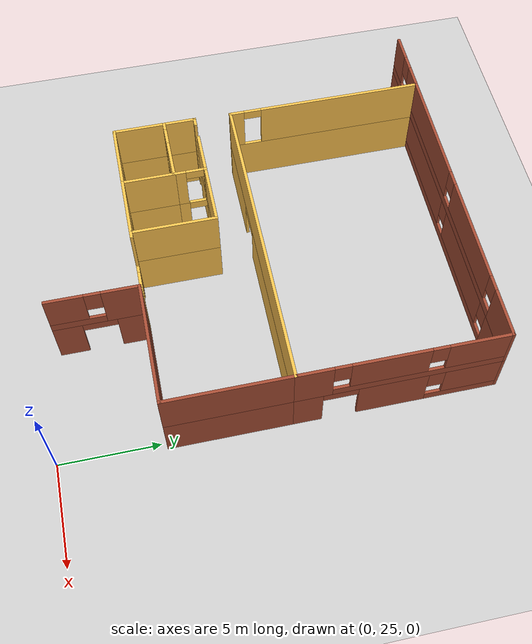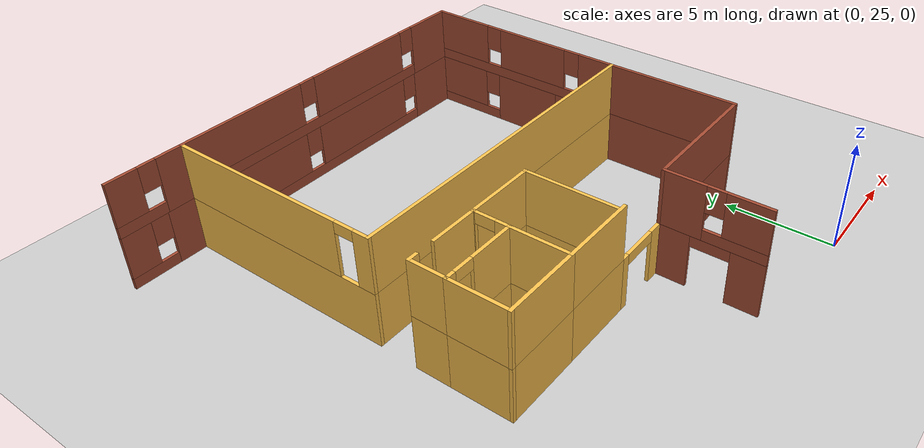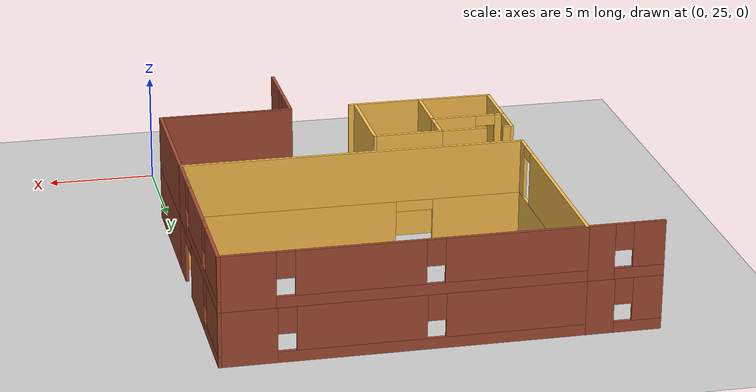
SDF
<sdf version="1.7">
 <world name="default">
  <model name="ground_plane">
   <static>1</static>
   <link name="link">
    <collision name="collision">
     <geometry><plane><normal>0 0 1</normal><size>100 100</size></plane></geometry>
     <surface>
      <contact><collide_bitmask>65535</collide_bitmask></contact>
      <friction><ode><mu>100</mu><mu2>50</mu2></ode></friction>
     </surface>
    </collision>
    <visual name="visual">
     <cast_shadows>0</cast_shadows>
     <geometry><plane><normal>0 0 1</normal><size>100 100</size></plane></geometry>
     <material>
      <script><uri>file://media/materials/scripts/gazebo.material</uri><name>Gazebo/Grey</name></script>
     </material>
    </visual>
   </link>
  </model>
  <model name="DepartmentBuilding">
   <pose>-25.6559 18.8293 0 0 -0 0</pose>
   <link name="Wall_221">
    <pose>18.3444 11.4891 0 0 -0 0</pose>
    <visual name="Wall_221_Visual_0">
     <pose>-1.23751 0 1.25 0 -0 0</pose>
     <geometry><box><size>0.524971 0.15 2.5</size></box></geometry>
     <material>
      <script><uri>file://media/materials/scripts/gazebo.material</uri><name>Gazebo/Grey</name></script>
      <ambient>1 0.764706 0.305882 1</ambient>
     </material>
     <meta><layer>0</layer></meta>
    </visual>
    <collision name="Wall_221_Collision_0">
     <geometry><box><size>0.524971 0.15 2.5</size></box></geometry>
     <pose>-1.23751 0 1.25 0 -0 0</pose>
    </collision>
    <visual name="Wall_221_Visual_1">
     <pose>1.11249 0 1.25 0 -0 0</pose>
     <geometry><box><size>0.775029 0.15 2.5</size></box></geometry>
     <material>
      <script><uri>file://media/materials/scripts/gazebo.material</uri><name>Gazebo/Grey</name></script>
      <ambient>1 0.764706 0.305882 1</ambient>
     </material>
     <meta><layer>0</layer></meta>
    </visual>
    <collision name="Wall_221_Collision_1">
     <geometry><box><size>0.775029 0.15 2.5</size></box></geometry>
     <pose>1.11249 0 1.25 0 -0 0</pose>
    </collision>
    <visual name="Wall_221_Visual_2">
     <pose>-0.125029 0 2.25 0 -0 0</pose>
     <geometry><box><size>1.7 0.15 0.5</size></box></geometry>
     <material>
      <script><uri>file://media/materials/scripts/gazebo.material</uri><name>Gazebo/Grey</name></script>
      <ambient>1 0.764706 0.305882 1</ambient>
     </material>
     <meta><layer>0</layer></meta>
    </visual>
    <collision name="Wall_221_Collision_2">
     <geometry><box><size>1.7 0.15 0.5</size></box></geometry>
     <pose>-0.125029 0 2.25 0 -0 0</pose>
    </collision>
   </link>
   <link name="Wall_222">
    <pose>19.7694 9.25971 0 0 -0 -1.5708</pose>
    <visual name="Wall_222_Visual_0">
     <pose>-1.57661 0 1.25 0 -0 0</pose>
     <geometry><box><size>1.45547 0.15 2.5</size></box></geometry>
     <material>
      <script><uri>file://media/materials/scripts/gazebo.material</uri><name>Gazebo/Bricks</name></script>
      <ambient>1 1 1 1</ambient>
     </material>
     <meta><layer>0</layer></meta>
    </visual>
    <collision name="Wall_222_Collision_0">
     <geometry><box><size>1.45547 0.15 2.5</size></box></geometry>
     <pose>-1.57661 0 1.25 0 -0 0</pose>
    </collision>
    <visual name="Wall_222_Visual_1">
     <pose>1.57774 0 1.25 0 -0 0</pose>
     <geometry><box><size>1.45323 0.15 2.5</size></box></geometry>
     <material>
      <script><uri>file://media/materials/scripts/gazebo.material</uri><name>Gazebo/Bricks</name></script>
      <ambient>1 1 1 1</ambient>
     </material>
     <meta><layer>0</layer></meta>
    </visual>
    <collision name="Wall_222_Collision_1">
     <geometry><box><size>1.45323 0.15 2.5</size></box></geometry>
     <pose>1.57774 0 1.25 0 -0 0</pose>
    </collision>
    <visual name="Wall_222_Visual_2">
     <pose>0.001122 0 2.25 0 -0 0</pose>
     <geometry><box><size>1.7 0.15 0.5</size></box></geometry>
     <material>
      <script><uri>file://media/materials/scripts/gazebo.material</uri><name>Gazebo/Bricks</name></script>
      <ambient>1 1 1 1</ambient>
     </material>
     <meta><layer>0</layer></meta>
    </visual>
    <collision name="Wall_222_Collision_2">
     <geometry><box><size>1.7 0.15 0.5</size></box></geometry>
     <pose>0.001122 0 2.25 0 -0 0</pose>
    </collision>
   </link>
   <link name="Wall_224">
    <collision name="Wall_224_Collision">
     <geometry><box><size>6.25 0.15 2.5</size></box></geometry>
     <pose>0 0 1.25 0 -0 0</pose>
    </collision>
    <visual name="Wall_224_Visual">
     <pose>0 0 1.25 0 -0 0</pose>
     <geometry><box><size>6.25 0.15 2.5</size></box></geometry>
     <material>
      <script><uri>file://media/materials/scripts/gazebo.material</uri><name>Gazebo/Bricks</name></script>
      <ambient>1 1 1 1</ambient>
     </material>
     <meta><layer>0</layer></meta>
    </visual>
    <pose>22.8194 11.4891 0 0 -0 0</pose>
   </link>
   <link name="Wall_225">
    <collision name="Wall_225_Collision">
     <geometry><box><size>6.25 0.15 2.5</size></box></geometry>
     <pose>0 0 1.25 0 -0 0</pose>
    </collision>
    <visual name="Wall_225_Visual">
     <pose>0 0 1.25 0 -0 0</pose>
     <geometry><box><size>6.25 0.15 2.5</size></box></geometry>
     <material>
      <script><uri>file://media/materials/scripts/gazebo.material</uri><name>Gazebo/Bricks</name></script>
      <ambient>1 1 1 1</ambient>
     </material>
     <meta><layer>0</layer></meta>
    </visual>
    <pose>25.8694 14.5391 0 0 -0 1.5708</pose>
   </link>
   <link name="Wall_226">
    <pose>18.0694 17.5891 0 0 -0 3.14159</pose>
    <visual name="Wall_226_Visual_0">
     <pose>-2.95172 0 1.25 0 -0 0</pose>
     <geometry><box><size>9.84657 0.15 2.5</size></box></geometry>
     <material>
      <script><uri>file://media/materials/scripts/gazebo.material</uri><name>Gazebo/Grey</name></script>
      <ambient>1 0.764706 0.305882 1</ambient>
     </material>
     <meta><layer>0</layer></meta>
    </visual>
    <collision name="Wall_226_Collision_0">
     <geometry><box><size>9.84657 0.15 2.5</size></box></geometry>
     <pose>-2.95172 0 1.25 0 -0 0</pose>
    </collision>
    <visual name="Wall_226_Visual_1">
     <pose>5.77328 0 1.25 0 -0 0</pose>
     <geometry><box><size>4.20343 0.15 2.5</size></box></geometry>
     <material>
      <script><uri>file://media/materials/scripts/gazebo.material</uri><name>Gazebo/Grey</name></script>
      <ambient>1 0.764706 0.305882 1</ambient>
     </material>
     <meta><layer>0</layer></meta>
    </visual>
    <collision name="Wall_226_Collision_1">
     <geometry><box><size>4.20343 0.15 2.5</size></box></geometry>
     <pose>5.77328 0 1.25 0 -0 0</pose>
    </collision>
    <visual name="Wall_226_Visual_2">
     <pose>2.82157 0 2.25 0 -0 0</pose>
     <geometry><box><size>1.7 0.15 0.5</size></box></geometry>
     <material>
      <script><uri>file://media/materials/scripts/gazebo.material</uri><name>Gazebo/Grey</name></script>
      <ambient>1 0.764706 0.305882 1</ambient>
     </material>
     <meta><layer>0</layer></meta>
    </visual>
    <collision name="Wall_226_Collision_2">
     <geometry><box><size>1.7 0.15 0.5</size></box></geometry>
     <pose>2.82157 0 2.25 0 -0 0</pose>
    </collision>
   </link>
   <link name="Wall_228">
    <collision name="Wall_228_Collision">
     <geometry><box><size>3.5 0.15 2.5</size></box></geometry>
     <pose>0 0 1.25 0 -0 0</pose>
    </collision>
    <visual name="Wall_228_Visual">
     <pose>0 0 1.25 0 -0 0</pose>
     <geometry><box><size>3.5 0.15 2.5</size></box></geometry>
     <material>
      <script><uri>file://media/materials/scripts/gazebo.material</uri><name>Gazebo/Grey</name></script>
      <ambient>1 0.764706 0.305882 1</ambient>
     </material>
     <meta><layer>0</layer></meta>
    </visual>
    <pose>15.2444 11.4891 0 0 -0 3.14159</pose>
   </link>
   <link name="Wall_229">
    <collision name="Wall_229_Collision">
     <geometry><box><size>3.5 0.15 2.5</size></box></geometry>
     <pose>0 0 1.25 0 -0 0</pose>
    </collision>
    <visual name="Wall_229_Visual">
     <pose>0 0 1.25 0 -0 0</pose>
     <geometry><box><size>3.5 0.15 2.5</size></box></geometry>
     <material>
      <script><uri>file://media/materials/scripts/gazebo.material</uri><name>Gazebo/Grey</name></script>
      <ambient>1 0.764706 0.305882 1</ambient>
     </material>
     <meta><layer>0</layer></meta>
    </visual>
    <pose>11.8944 11.4891 0 0 -0 3.14159</pose>
   </link>
   <link name="Wall_230">
    <collision name="Wall_230_Collision">
     <geometry><box><size>2.75 0.15 2.5</size></box></geometry>
     <pose>0 0 1.25 0 -0 0</pose>
    </collision>
    <visual name="Wall_230_Visual">
     <pose>0 0 1.25 0 -0 0</pose>
     <geometry><box><size>2.75 0.15 2.5</size></box></geometry>
     <material>
      <script><uri>file://media/materials/scripts/gazebo.material</uri><name>Gazebo/Grey</name></script>
      <ambient>1 0.764706 0.305882 1</ambient>
     </material>
     <meta><layer>0</layer></meta>
    </visual>
    <pose>10.2194 12.7891 0 0 -0 1.5708</pose>
   </link>
   <link name="Wall_231">
    <pose>11.8944 14.0891 0 0 -0 0</pose>
    <visual name="Wall_231_Visual_0">
     <pose>-1.56153 0 1.25 0 -0 0</pose>
     <geometry><box><size>0.376942 0.15 2.5</size></box></geometry>
     <material>
      <script><uri>file://media/materials/scripts/gazebo.material</uri><name>Gazebo/Grey</name></script>
      <ambient>1 0.764706 0.305882 1</ambient>
     </material>
     <meta><layer>0</layer></meta>
    </visual>
    <collision name="Wall_231_Collision_0">
     <geometry><box><size>0.376942 0.15 2.5</size></box></geometry>
     <pose>-1.56153 0 1.25 0 -0 0</pose>
    </collision>
    <visual name="Wall_231_Visual_1">
     <pose>0.638471 0 1.25 0 -0 0</pose>
     <geometry><box><size>2.22306 0.15 2.5</size></box></geometry>
     <material>
      <script><uri>file://media/materials/scripts/gazebo.material</uri><name>Gazebo/Grey</name></script>
      <ambient>1 0.764706 0.305882 1</ambient>
     </material>
     <meta><layer>0</layer></meta>
    </visual>
    <collision name="Wall_231_Collision_1">
     <geometry><box><size>2.22306 0.15 2.5</size></box></geometry>
     <pose>0.638471 0 1.25 0 -0 0</pose>
    </collision>
    <visual name="Wall_231_Visual_2">
     <pose>-0.923058 0 2.25 0 -0 0</pose>
     <geometry><box><size>0.9 0.15 0.5</size></box></geometry>
     <material>
      <script><uri>file://media/materials/scripts/gazebo.material</uri><name>Gazebo/Grey</name></script>
      <ambient>1 0.764706 0.305882 1</ambient>
     </material>
     <meta><layer>0</layer></meta>
    </visual>
    <collision name="Wall_231_Collision_2">
     <geometry><box><size>0.9 0.15 0.5</size></box></geometry>
     <pose>-0.923058 0 2.25 0 -0 0</pose>
    </collision>
   </link>
   <link name="Wall_232">
    <collision name="Wall_232_Collision">
     <geometry><box><size>2.75 0.15 2.5</size></box></geometry>
     <pose>0 0 1.25 0 -0 0</pose>
    </collision>
    <visual name="Wall_232_Visual">
     <pose>0 0 1.25 0 -0 0</pose>
     <geometry><box><size>2.75 0.15 2.5</size></box></geometry>
     <material>
      <script><uri>file://media/materials/scripts/gazebo.material</uri><name>Gazebo/Grey</name></script>
      <ambient>1 0.764706 0.305882 1</ambient>
     </material>
     <meta><layer>0</layer></meta>
    </visual>
    <pose>13.5694 12.7891 0 0 -0 -1.5708</pose>
   </link>
   <link name="Wall_234">
    <pose>13.5694 14.8891 0 0 -0 1.5708</pose>
    <visual name="Wall_234_Visual_0">
     <pose>-0.524888 0 1.25 0 -0 0</pose>
     <geometry><box><size>0.700225 0.15 2.5</size></box></geometry>
     <material>
      <script><uri>file://media/materials/scripts/gazebo.material</uri><name>Gazebo/Grey</name></script>
      <ambient>1 0.764706 0.305882 1</ambient>
     </material>
     <meta><layer>0</layer></meta>
    </visual>
    <collision name="Wall_234_Collision_0">
     <geometry><box><size>0.700225 0.15 2.5</size></box></geometry>
     <pose>-0.524888 0 1.25 0 -0 0</pose>
    </collision>
    <visual name="Wall_234_Visual_1">
     <pose>0.800112 0 1.25 0 -0 0</pose>
     <geometry><box><size>0.149775 0.15 2.5</size></box></geometry>
     <material>
      <script><uri>file://media/materials/scripts/gazebo.material</uri><name>Gazebo/Grey</name></script>
      <ambient>1 0.764706 0.305882 1</ambient>
     </material>
     <meta><layer>0</layer></meta>
    </visual>
    <collision name="Wall_234_Collision_1">
     <geometry><box><size>0.149775 0.15 2.5</size></box></geometry>
     <pose>0.800112 0 1.25 0 -0 0</pose>
    </collision>
    <visual name="Wall_234_Visual_2">
     <pose>0.275225 0 2.25 0 -0 0</pose>
     <geometry><box><size>0.9 0.15 0.5</size></box></geometry>
     <material>
      <script><uri>file://media/materials/scripts/gazebo.material</uri><name>Gazebo/Grey</name></script>
      <ambient>1 0.764706 0.305882 1</ambient>
     </material>
     <meta><layer>0</layer></meta>
    </visual>
    <collision name="Wall_234_Collision_2">
     <geometry><box><size>0.9 0.15 0.5</size></box></geometry>
     <pose>0.275225 0 2.25 0 -0 0</pose>
    </collision>
   </link>
   <link name="Wall_235">
    <collision name="Wall_235_Collision">
     <geometry><box><size>3.25 0.15 2.5</size></box></geometry>
     <pose>0 0 1.25 0 -0 0</pose>
    </collision>
    <visual name="Wall_235_Visual">
     <pose>0 0 1.25 0 -0 0</pose>
     <geometry><box><size>3.25 0.15 2.5</size></box></geometry>
     <material>
      <script><uri>file://media/materials/scripts/gazebo.material</uri><name>Gazebo/Grey</name></script>
      <ambient>1 0.764706 0.305882 1</ambient>
     </material>
     <meta><layer>0</layer></meta>
    </visual>
    <pose>15.1194 15.6891 0 0 -0 0</pose>
   </link>
   <link name="Wall_236">
    <collision name="Wall_236_Collision">
     <geometry><box><size>4.25 0.15 2.5</size></box></geometry>
     <pose>0 0 1.25 0 -0 0</pose>
    </collision>
    <visual name="Wall_236_Visual">
     <pose>0 0 1.25 0 -0 0</pose>
     <geometry><box><size>4.25 0.15 2.5</size></box></geometry>
     <material>
      <script><uri>file://media/materials/scripts/gazebo.material</uri><name>Gazebo/Grey</name></script>
      <ambient>1 0.764706 0.305882 1</ambient>
     </material>
     <meta><layer>0</layer></meta>
    </visual>
    <pose>16.6694 13.6391 0 0 -0 -1.5708</pose>
   </link>
   <link name="Wall_238">
    <collision name="Wall_238_Collision">
     <geometry><box><size>2.25 0.15 2.5</size></box></geometry>
     <pose>0 0 1.25 0 -0 0</pose>
    </collision>
    <visual name="Wall_238_Visual">
     <pose>0 0 1.25 0 -0 0</pose>
     <geometry><box><size>2.25 0.15 2.5</size></box></geometry>
     <material>
      <script><uri>file://media/materials/scripts/gazebo.material</uri><name>Gazebo/Grey</name></script>
      <ambient>1 0.764706 0.305882 1</ambient>
     </material>
     <meta><layer>0</layer></meta>
    </visual>
    <pose>12.5194 15.6891 0 0 -0 3.14159</pose>
   </link>
   <link name="Wall_240">
    <collision name="Wall_240_Collision">
     <geometry><box><size>1.75 0.15 2.5</size></box></geometry>
     <pose>0 0 1.25 0 -0 0</pose>
    </collision>
    <visual name="Wall_240_Visual">
     <pose>0 0 1.25 0 -0 0</pose>
     <geometry><box><size>1.75 0.15 2.5</size></box></geometry>
     <material>
      <script><uri>file://media/materials/scripts/gazebo.material</uri><name>Gazebo/Grey</name></script>
      <ambient>1 0.764706 0.305882 1</ambient>
     </material>
     <meta><layer>0</layer></meta>
    </visual>
    <pose>10.2194 14.8891 0 0 -0 1.5708</pose>
   </link>
   <link name="Wall_241">
    <collision name="Wall_241_Collision">
     <geometry><box><size>0.5 0.15 2.5</size></box></geometry>
     <pose>0 0 1.25 0 -0 0</pose>
    </collision>
    <visual name="Wall_241_Visual">
     <pose>0 0 1.25 0 -0 0</pose>
     <geometry><box><size>0.5 0.15 2.5</size></box></geometry>
     <material>
      <script><uri>file://media/materials/scripts/gazebo.material</uri><name>Gazebo/Grey</name></script>
      <ambient>1 0.764706 0.305882 1</ambient>
     </material>
     <meta><layer>0</layer></meta>
    </visual>
    <pose>10.3944 15.6891 0 0 -0 0</pose>
   </link>
   <link name="Wall_243">
    <pose>25.8694 22.6391 0 0 -0 1.5708</pose>
    <visual name="Wall_243_Visual_0">
     <pose>-4.41512 0 1.25 0 -0 0</pose>
     <geometry><box><size>1.41976 0.15 2.5</size></box></geometry>
     <material>
      <script><uri>file://media/materials/scripts/gazebo.material</uri><name>Gazebo/Bricks</name></script>
      <ambient>1 1 1 1</ambient>
     </material>
     <meta><layer>0</layer></meta>
    </visual>
    <collision name="Wall_243_Collision_0">
     <geometry><box><size>1.41976 0.15 2.5</size></box></geometry>
     <pose>-4.41512 0 1.25 0 -0 0</pose>
    </collision>
    <visual name="Wall_243_Visual_1">
     <pose>-0.301095 0 1.25 0 -0 0</pose>
     <geometry><box><size>3.40828 0.15 2.5</size></box></geometry>
     <material>
      <script><uri>file://media/materials/scripts/gazebo.material</uri><name>Gazebo/Bricks</name></script>
      <ambient>1 1 1 1</ambient>
     </material>
     <meta><layer>0</layer></meta>
    </visual>
    <collision name="Wall_243_Collision_1">
     <geometry><box><size>3.40828 0.15 2.5</size></box></geometry>
     <pose>-0.301095 0 1.25 0 -0 0</pose>
    </collision>
    <visual name="Wall_243_Visual_2">
     <pose>3.26402 0 0.25 0 -0 0</pose>
     <geometry><box><size>3.72195 0.15 0.5</size></box></geometry>
     <material>
      <script><uri>file://media/materials/scripts/gazebo.material</uri><name>Gazebo/Bricks</name></script>
      <ambient>1 1 1 1</ambient>
     </material>
     <meta><layer>0</layer></meta>
    </visual>
    <collision name="Wall_243_Collision_2">
     <geometry><box><size>3.72195 0.15 0.5</size></box></geometry>
     <pose>3.26402 0 0.25 0 -0 0</pose>
    </collision>
    <visual name="Wall_243_Visual_3">
     <pose>3.66402 0 1.5 0 -0 0</pose>
     <geometry><box><size>2.92195 0.15 2</size></box></geometry>
     <material>
      <script><uri>file://media/materials/scripts/gazebo.material</uri><name>Gazebo/Bricks</name></script>
      <ambient>1 1 1 1</ambient>
     </material>
     <meta><layer>0</layer></meta>
    </visual>
    <collision name="Wall_243_Collision_3">
     <geometry><box><size>2.92195 0.15 2</size></box></geometry>
     <pose>3.66402 0 1.5 0 -0 0</pose>
    </collision>
    <visual name="Wall_243_Visual_4">
     <pose>1.80305 0 1.9 0 -0 0</pose>
     <geometry><box><size>0.8 0.15 1.2</size></box></geometry>
     <material>
      <script><uri>file://media/materials/scripts/gazebo.material</uri><name>Gazebo/Bricks</name></script>
      <ambient>1 1 1 1</ambient>
     </material>
     <meta><layer>0</layer></meta>
    </visual>
    <collision name="Wall_243_Collision_4">
     <geometry><box><size>0.8 0.15 1.2</size></box></geometry>
     <pose>1.80305 0 1.9 0 -0 0</pose>
    </collision>
    <visual name="Wall_243_Visual_5">
     <pose>-2.85524 0 2.25 0 -0 0</pose>
     <geometry><box><size>1.7 0.15 0.5</size></box></geometry>
     <material>
      <script><uri>file://media/materials/scripts/gazebo.material</uri><name>Gazebo/Bricks</name></script>
      <ambient>1 1 1 1</ambient>
     </material>
     <meta><layer>0</layer></meta>
    </visual>
    <collision name="Wall_243_Collision_5">
     <geometry><box><size>1.7 0.15 0.5</size></box></geometry>
     <pose>-2.85524 0 2.25 0 -0 0</pose>
    </collision>
   </link>
   <link name="Wall_245">
    <pose>18.0694 27.6891 0 0 -0 3.14159</pose>
    <visual name="Wall_245_Visual_0">
     <pose>-6.61675 0 1.25 0 -0 0</pose>
     <geometry><box><size>2.5165 0.15 2.5</size></box></geometry>
     <material>
      <script><uri>file://media/materials/scripts/gazebo.material</uri><name>Gazebo/Bricks</name></script>
      <ambient>1 1 1 1</ambient>
     </material>
     <meta><layer>0</layer></meta>
    </visual>
    <collision name="Wall_245_Collision_0">
     <geometry><box><size>2.5165 0.15 2.5</size></box></geometry>
     <pose>-6.61675 0 1.25 0 -0 0</pose>
    </collision>
    <visual name="Wall_245_Visual_1">
     <pose>1.25825 0 0.25 0 -0 0</pose>
     <geometry><box><size>13.2335 0.15 0.5</size></box></geometry>
     <material>
      <script><uri>file://media/materials/scripts/gazebo.material</uri><name>Gazebo/Bricks</name></script>
      <ambient>1 1 1 1</ambient>
     </material>
     <meta><layer>0</layer></meta>
    </visual>
    <collision name="Wall_245_Collision_1">
     <geometry><box><size>13.2335 0.15 0.5</size></box></geometry>
     <pose>1.25825 0 0.25 0 -0 0</pose>
    </collision>
    <visual name="Wall_245_Visual_2">
     <pose>-1.77978 0 1.5 0 -0 0</pose>
     <geometry><box><size>5.55745 0.15 2</size></box></geometry>
     <material>
      <script><uri>file://media/materials/scripts/gazebo.material</uri><name>Gazebo/Bricks</name></script>
      <ambient>1 1 1 1</ambient>
     </material>
     <meta><layer>0</layer></meta>
    </visual>
    <collision name="Wall_245_Collision_2">
     <geometry><box><size>5.55745 0.15 2</size></box></geometry>
     <pose>-1.77978 0 1.5 0 -0 0</pose>
    </collision>
    <visual name="Wall_245_Visual_3">
     <pose>4.83697 0 1.5 0 -0 0</pose>
     <geometry><box><size>6.07605 0.15 2</size></box></geometry>
     <material>
      <script><uri>file://media/materials/scripts/gazebo.material</uri><name>Gazebo/Bricks</name></script>
      <ambient>1 1 1 1</ambient>
     </material>
     <meta><layer>0</layer></meta>
    </visual>
    <collision name="Wall_245_Collision_3">
     <geometry><box><size>6.07605 0.15 2</size></box></geometry>
     <pose>4.83697 0 1.5 0 -0 0</pose>
    </collision>
    <visual name="Wall_245_Visual_4">
     <pose>-4.9585 0 1.9 0 -0 0</pose>
     <geometry><box><size>0.8 0.15 1.2</size></box></geometry>
     <material>
      <script><uri>file://media/materials/scripts/gazebo.material</uri><name>Gazebo/Bricks</name></script>
      <ambient>1 1 1 1</ambient>
     </material>
     <meta><layer>0</layer></meta>
    </visual>
    <collision name="Wall_245_Collision_4">
     <geometry><box><size>0.8 0.15 1.2</size></box></geometry>
     <pose>-4.9585 0 1.9 0 -0 0</pose>
    </collision>
    <visual name="Wall_245_Visual_5">
     <pose>1.39895 0 1.9 0 -0 0</pose>
     <geometry><box><size>0.8 0.15 1.2</size></box></geometry>
     <material>
      <script><uri>file://media/materials/scripts/gazebo.material</uri><name>Gazebo/Bricks</name></script>
      <ambient>1 1 1 1</ambient>
     </material>
     <meta><layer>0</layer></meta>
    </visual>
    <collision name="Wall_245_Collision_5">
     <geometry><box><size>0.8 0.15 1.2</size></box></geometry>
     <pose>1.39895 0 1.9 0 -0 0</pose>
    </collision>
   </link>
   <link name="Wall_247">
    <collision name="Wall_247_Collision">
     <geometry><box><size>10.25 0.15 2.5</size></box></geometry>
     <pose>0 0 1.25 0 -0 0</pose>
    </collision>
    <visual name="Wall_247_Visual">
     <pose>0 0 1.25 0 -0 0</pose>
     <geometry><box><size>10.25 0.15 2.5</size></box></geometry>
     <material>
      <script><uri>file://media/materials/scripts/gazebo.material</uri><name>Gazebo/Grey</name></script>
      <ambient>1 0.764706 0.305882 1</ambient>
     </material>
     <meta><layer>0</layer></meta>
    </visual>
    <pose>10.2694 22.6391 0 0 -0 -1.5708</pose>
   </link>
   <link name="Wall_249">
    <pose>8.59441 27.6891 0 0 -0 3.14159</pose>
    <visual name="Wall_249_Visual_0">
     <pose>-1.06107 0 1.25 0 -0 0</pose>
     <geometry><box><size>1.37786 0.15 2.5</size></box></geometry>
     <material>
      <script><uri>file://media/materials/scripts/gazebo.material</uri><name>Gazebo/Bricks</name></script>
      <ambient>1 1 1 1</ambient>
     </material>
     <meta><layer>0</layer></meta>
    </visual>
    <collision name="Wall_249_Collision_0">
     <geometry><box><size>1.37786 0.15 2.5</size></box></geometry>
     <pose>-1.06107 0 1.25 0 -0 0</pose>
    </collision>
    <visual name="Wall_249_Visual_1">
     <pose>0.688927 0 0.25 0 -0 0</pose>
     <geometry><box><size>2.12215 0.15 0.5</size></box></geometry>
     <material>
      <script><uri>file://media/materials/scripts/gazebo.material</uri><name>Gazebo/Bricks</name></script>
      <ambient>1 1 1 1</ambient>
     </material>
     <meta><layer>0</layer></meta>
    </visual>
    <collision name="Wall_249_Collision_1">
     <geometry><box><size>2.12215 0.15 0.5</size></box></geometry>
     <pose>0.688927 0 0.25 0 -0 0</pose>
    </collision>
    <visual name="Wall_249_Visual_2">
     <pose>1.08893 0 1.5 0 -0 0</pose>
     <geometry><box><size>1.32214 0.15 2</size></box></geometry>
     <material>
      <script><uri>file://media/materials/scripts/gazebo.material</uri><name>Gazebo/Bricks</name></script>
      <ambient>1 1 1 1</ambient>
     </material>
     <meta><layer>0</layer></meta>
    </visual>
    <collision name="Wall_249_Collision_2">
     <geometry><box><size>1.32214 0.15 2</size></box></geometry>
     <pose>1.08893 0 1.5 0 -0 0</pose>
    </collision>
    <visual name="Wall_249_Visual_3">
     <pose>0.027855 0 1.9 0 -0 0</pose>
     <geometry><box><size>0.8 0.15 1.2</size></box></geometry>
     <material>
      <script><uri>file://media/materials/scripts/gazebo.material</uri><name>Gazebo/Bricks</name></script>
      <ambient>1 1 1 1</ambient>
     </material>
     <meta><layer>0</layer></meta>
    </visual>
    <collision name="Wall_249_Collision_3">
     <geometry><box><size>0.8 0.15 1.2</size></box></geometry>
     <pose>0.027855 0 1.9 0 -0 0</pose>
    </collision>
   </link>
   <link name="Wall_903">
    <pose>19.7694 9.25971 2.5 0 -0 -1.5708</pose>
    <visual name="Wall_903_Visual_0">
     <pose>-1.34739 0 1.25 0 -0 0</pose>
     <geometry><box><size>1.91391 0.15 2.5</size></box></geometry>
     <material>
      <script><uri>file://media/materials/scripts/gazebo.material</uri><name>Gazebo/Bricks</name></script>
      <ambient>1 1 1 1</ambient>
     </material>
     <meta><layer>1</layer></meta>
    </visual>
    <collision name="Wall_903_Collision_0">
     <geometry><box><size>1.91391 0.15 2.5</size></box></geometry>
     <pose>-1.34739 0 1.25 0 -0 0</pose>
    </collision>
    <visual name="Wall_903_Visual_1">
     <pose>0.956955 0 0.25 0 -0 0</pose>
     <geometry><box><size>2.69478 0.15 0.5</size></box></geometry>
     <material>
      <script><uri>file://media/materials/scripts/gazebo.material</uri><name>Gazebo/Bricks</name></script>
      <ambient>1 1 1 1</ambient>
     </material>
     <meta><layer>1</layer></meta>
    </visual>
    <collision name="Wall_903_Collision_1">
     <geometry><box><size>2.69478 0.15 0.5</size></box></geometry>
     <pose>0.956955 0 0.25 0 -0 0</pose>
    </collision>
    <visual name="Wall_903_Visual_2">
     <pose>1.35695 0 1.5 0 -0 0</pose>
     <geometry><box><size>1.89478 0.15 2</size></box></geometry>
     <material>
      <script><uri>file://media/materials/scripts/gazebo.material</uri><name>Gazebo/Bricks</name></script>
      <ambient>1 1 1 1</ambient>
     </material>
     <meta><layer>1</layer></meta>
    </visual>
    <collision name="Wall_903_Collision_2">
     <geometry><box><size>1.89478 0.15 2</size></box></geometry>
     <pose>1.35695 0 1.5 0 -0 0</pose>
    </collision>
    <visual name="Wall_903_Visual_3">
     <pose>0.009562 0 1.9 0 -0 0</pose>
     <geometry><box><size>0.8 0.15 1.2</size></box></geometry>
     <material>
      <script><uri>file://media/materials/scripts/gazebo.material</uri><name>Gazebo/Bricks</name></script>
      <ambient>1 1 1 1</ambient>
     </material>
     <meta><layer>1</layer></meta>
    </visual>
    <collision name="Wall_903_Collision_3">
     <geometry><box><size>0.8 0.15 1.2</size></box></geometry>
     <pose>0.009562 0 1.9 0 -0 0</pose>
    </collision>
   </link>
   <link name="Wall_904">
    <collision name="Wall_904_Collision">
     <geometry><box><size>6.25 0.15 2.5</size></box></geometry>
     <pose>0 0 1.25 0 -0 0</pose>
    </collision>
    <visual name="Wall_904_Visual">
     <pose>0 0 1.25 0 -0 0</pose>
     <geometry><box><size>6.25 0.15 2.5</size></box></geometry>
     <material>
      <script><uri>file://media/materials/scripts/gazebo.material</uri><name>Gazebo/Bricks</name></script>
      <ambient>1 1 1 1</ambient>
     </material>
     <meta><layer>1</layer></meta>
    </visual>
    <pose>22.8194 11.4891 2.5 0 -0 0</pose>
   </link>
   <link name="Wall_905">
    <collision name="Wall_905_Collision">
     <geometry><box><size>6.25 0.15 2.5</size></box></geometry>
     <pose>0 0 1.25 0 -0 0</pose>
    </collision>
    <visual name="Wall_905_Visual">
     <pose>0 0 1.25 0 -0 0</pose>
     <geometry><box><size>6.25 0.15 2.5</size></box></geometry>
     <material>
      <script><uri>file://media/materials/scripts/gazebo.material</uri><name>Gazebo/Bricks</name></script>
      <ambient>1 1 1 1</ambient>
     </material>
     <meta><layer>1</layer></meta>
    </visual>
    <pose>25.8694 14.5391 2.5 0 -0 1.5708</pose>
   </link>
   <link name="Wall_906">
    <collision name="Wall_906_Collision">
     <geometry><box><size>15.75 0.15 2.5</size></box></geometry>
     <pose>0 0 1.25 0 -0 0</pose>
    </collision>
    <visual name="Wall_906_Visual">
     <pose>0 0 1.25 0 -0 0</pose>
     <geometry><box><size>15.75 0.15 2.5</size></box></geometry>
     <material>
      <script><uri>file://media/materials/scripts/gazebo.material</uri><name>Gazebo/Grey</name></script>
      <ambient>1 0.764706 0.305882 1</ambient>
     </material>
     <meta><layer>1</layer></meta>
    </visual>
    <pose>18.0694 17.5891 2.5 0 -0 3.14159</pose>
   </link>
   <link name="Wall_907">
    <collision name="Wall_907_Collision">
     <geometry><box><size>3.5 0.15 2.5</size></box></geometry>
     <pose>0 0 1.25 0 -0 0</pose>
    </collision>
    <visual name="Wall_907_Visual">
     <pose>0 0 1.25 0 -0 0</pose>
     <geometry><box><size>3.5 0.15 2.5</size></box></geometry>
     <material>
      <script><uri>file://media/materials/scripts/gazebo.material</uri><name>Gazebo/Grey</name></script>
      <ambient>1 0.764706 0.305882 1</ambient>
     </material>
     <meta><layer>1</layer></meta>
    </visual>
    <pose>15.2444 11.4891 2.5 0 -0 3.14159</pose>
   </link>
   <link name="Wall_908">
    <collision name="Wall_908_Collision">
     <geometry><box><size>3.5 0.15 2.5</size></box></geometry>
     <pose>0 0 1.25 0 -0 0</pose>
    </collision>
    <visual name="Wall_908_Visual">
     <pose>0 0 1.25 0 -0 0</pose>
     <geometry><box><size>3.5 0.15 2.5</size></box></geometry>
     <material>
      <script><uri>file://media/materials/scripts/gazebo.material</uri><name>Gazebo/Grey</name></script>
      <ambient>1 0.764706 0.305882 1</ambient>
     </material>
     <meta><layer>1</layer></meta>
    </visual>
    <pose>11.8944 11.4891 2.5 0 -0 3.14159</pose>
   </link>
   <link name="Wall_909">
    <collision name="Wall_909_Collision">
     <geometry><box><size>2.75 0.15 2.5</size></box></geometry>
     <pose>0 0 1.25 0 -0 0</pose>
    </collision>
    <visual name="Wall_909_Visual">
     <pose>0 0 1.25 0 -0 0</pose>
     <geometry><box><size>2.75 0.15 2.5</size></box></geometry>
     <material>
      <script><uri>file://media/materials/scripts/gazebo.material</uri><name>Gazebo/Grey</name></script>
      <ambient>1 0.764706 0.305882 1</ambient>
     </material>
     <meta><layer>1</layer></meta>
    </visual>
    <pose>10.2194 12.7891 2.5 0 -0 1.5708</pose>
   </link>
   <link name="Wall_910">
    <pose>11.8944 14.0891 2.5 0 -0 0</pose>
    <visual name="Wall_910_Visual_0">
     <pose>-1.51527 0 1.25 0 -0 0</pose>
     <geometry><box><size>0.469464 0.15 2.5</size></box></geometry>
     <material>
      <script><uri>file://media/materials/scripts/gazebo.material</uri><name>Gazebo/Grey</name></script>
      <ambient>1 0.764706 0.305882 1</ambient>
     </material>
     <meta><layer>1</layer></meta>
    </visual>
    <collision name="Wall_910_Collision_0">
     <geometry><box><size>0.469464 0.15 2.5</size></box></geometry>
     <pose>-1.51527 0 1.25 0 -0 0</pose>
    </collision>
    <visual name="Wall_910_Visual_1">
     <pose>0.684732 0 1.25 0 -0 0</pose>
     <geometry><box><size>2.13054 0.15 2.5</size></box></geometry>
     <material>
      <script><uri>file://media/materials/scripts/gazebo.material</uri><name>Gazebo/Grey</name></script>
      <ambient>1 0.764706 0.305882 1</ambient>
     </material>
     <meta><layer>1</layer></meta>
    </visual>
    <collision name="Wall_910_Collision_1">
     <geometry><box><size>2.13054 0.15 2.5</size></box></geometry>
     <pose>0.684732 0 1.25 0 -0 0</pose>
    </collision>
    <visual name="Wall_910_Visual_2">
     <pose>-0.830536 0 2.25 0 -0 0</pose>
     <geometry><box><size>0.9 0.15 0.5</size></box></geometry>
     <material>
      <script><uri>file://media/materials/scripts/gazebo.material</uri><name>Gazebo/Grey</name></script>
      <ambient>1 0.764706 0.305882 1</ambient>
     </material>
     <meta><layer>1</layer></meta>
    </visual>
    <collision name="Wall_910_Collision_2">
     <geometry><box><size>0.9 0.15 0.5</size></box></geometry>
     <pose>-0.830536 0 2.25 0 -0 0</pose>
    </collision>
   </link>
   <link name="Wall_911">
    <collision name="Wall_911_Collision">
     <geometry><box><size>2.75 0.15 2.5</size></box></geometry>
     <pose>0 0 1.25 0 -0 0</pose>
    </collision>
    <visual name="Wall_911_Visual">
     <pose>0 0 1.25 0 -0 0</pose>
     <geometry><box><size>2.75 0.15 2.5</size></box></geometry>
     <material>
      <script><uri>file://media/materials/scripts/gazebo.material</uri><name>Gazebo/Grey</name></script>
      <ambient>1 0.764706 0.305882 1</ambient>
     </material>
     <meta><layer>1</layer></meta>
    </visual>
    <pose>13.5694 12.7891 2.5 0 -0 -1.5708</pose>
   </link>
   <link name="Wall_912">
    <pose>13.5694 14.8891 2.5 0 -0 1.5708</pose>
    <visual name="Wall_912_Visual_0">
     <pose>-0.542514 0 1.25 0 -0 0</pose>
     <geometry><box><size>0.664971 0.15 2.5</size></box></geometry>
     <material>
      <script><uri>file://media/materials/scripts/gazebo.material</uri><name>Gazebo/Grey</name></script>
      <ambient>1 0.764706 0.305882 1</ambient>
     </material>
     <meta><layer>1</layer></meta>
    </visual>
    <collision name="Wall_912_Collision_0">
     <geometry><box><size>0.664971 0.15 2.5</size></box></geometry>
     <pose>-0.542514 0 1.25 0 -0 0</pose>
    </collision>
    <visual name="Wall_912_Visual_1">
     <pose>0.782486 0 1.25 0 -0 0</pose>
     <geometry><box><size>0.185029 0.15 2.5</size></box></geometry>
     <material>
      <script><uri>file://media/materials/scripts/gazebo.material</uri><name>Gazebo/Grey</name></script>
      <ambient>1 0.764706 0.305882 1</ambient>
     </material>
     <meta><layer>1</layer></meta>
    </visual>
    <collision name="Wall_912_Collision_1">
     <geometry><box><size>0.185029 0.15 2.5</size></box></geometry>
     <pose>0.782486 0 1.25 0 -0 0</pose>
    </collision>
    <visual name="Wall_912_Visual_2">
     <pose>0.239971 0 2.25 0 -0 0</pose>
     <geometry><box><size>0.9 0.15 0.5</size></box></geometry>
     <material>
      <script><uri>file://media/materials/scripts/gazebo.material</uri><name>Gazebo/Grey</name></script>
      <ambient>1 0.764706 0.305882 1</ambient>
     </material>
     <meta><layer>1</layer></meta>
    </visual>
    <collision name="Wall_912_Collision_2">
     <geometry><box><size>0.9 0.15 0.5</size></box></geometry>
     <pose>0.239971 0 2.25 0 -0 0</pose>
    </collision>
   </link>
   <link name="Wall_913">
    <collision name="Wall_913_Collision">
     <geometry><box><size>3.25 0.15 2.5</size></box></geometry>
     <pose>0 0 1.25 0 -0 0</pose>
    </collision>
    <visual name="Wall_913_Visual">
     <pose>0 0 1.25 0 -0 0</pose>
     <geometry><box><size>3.25 0.15 2.5</size></box></geometry>
     <material>
      <script><uri>file://media/materials/scripts/gazebo.material</uri><name>Gazebo/Grey</name></script>
      <ambient>1 0.764706 0.305882 1</ambient>
     </material>
     <meta><layer>1</layer></meta>
    </visual>
    <pose>15.1194 15.6891 2.5 0 -0 0</pose>
   </link>
   <link name="Wall_914">
    <collision name="Wall_914_Collision">
     <geometry><box><size>4.25 0.15 2.5</size></box></geometry>
     <pose>0 0 1.25 0 -0 0</pose>
    </collision>
    <visual name="Wall_914_Visual">
     <pose>0 0 1.25 0 -0 0</pose>
     <geometry><box><size>4.25 0.15 2.5</size></box></geometry>
     <material>
      <script><uri>file://media/materials/scripts/gazebo.material</uri><name>Gazebo/Grey</name></script>
      <ambient>1 0.764706 0.305882 1</ambient>
     </material>
     <meta><layer>1</layer></meta>
    </visual>
    <pose>16.6694 13.6391 2.5 0 -0 -1.5708</pose>
   </link>
   <link name="Wall_915">
    <collision name="Wall_915_Collision">
     <geometry><box><size>2.25 0.15 2.5</size></box></geometry>
     <pose>0 0 1.25 0 -0 0</pose>
    </collision>
    <visual name="Wall_915_Visual">
     <pose>0 0 1.25 0 -0 0</pose>
     <geometry><box><size>2.25 0.15 2.5</size></box></geometry>
     <material>
      <script><uri>file://media/materials/scripts/gazebo.material</uri><name>Gazebo/Grey</name></script>
      <ambient>1 0.764706 0.305882 1</ambient>
     </material>
     <meta><layer>1</layer></meta>
    </visual>
    <pose>12.5194 15.6891 2.5 0 -0 3.14159</pose>
   </link>
   <link name="Wall_916">
    <collision name="Wall_916_Collision">
     <geometry><box><size>1.75 0.15 2.5</size></box></geometry>
     <pose>0 0 1.25 0 -0 0</pose>
    </collision>
    <visual name="Wall_916_Visual">
     <pose>0 0 1.25 0 -0 0</pose>
     <geometry><box><size>1.75 0.15 2.5</size></box></geometry>
     <material>
      <script><uri>file://media/materials/scripts/gazebo.material</uri><name>Gazebo/Grey</name></script>
      <ambient>1 0.764706 0.305882 1</ambient>
     </material>
     <meta><layer>1</layer></meta>
    </visual>
    <pose>10.2194 14.8891 2.5 0 -0 1.5708</pose>
   </link>
   <link name="Wall_917">
    <collision name="Wall_917_Collision">
     <geometry><box><size>0.5 0.15 2.5</size></box></geometry>
     <pose>0 0 1.25 0 -0 0</pose>
    </collision>
    <visual name="Wall_917_Visual">
     <pose>0 0 1.25 0 -0 0</pose>
     <geometry><box><size>0.5 0.15 2.5</size></box></geometry>
     <material>
      <script><uri>file://media/materials/scripts/gazebo.material</uri><name>Gazebo/Grey</name></script>
      <ambient>1 0.764706 0.305882 1</ambient>
     </material>
     <meta><layer>1</layer></meta>
    </visual>
    <pose>10.3944 15.6891 2.5 0 -0 0</pose>
   </link>
   <link name="Wall_918">
    <pose>25.8694 22.6391 2.5 0 -0 1.5708</pose>
    <visual name="Wall_918_Visual_0">
     <pose>-4.20504 0 1.25 0 -0 0</pose>
     <geometry><box><size>1.83991 0.15 2.5</size></box></geometry>
     <material>
      <script><uri>file://media/materials/scripts/gazebo.material</uri><name>Gazebo/Bricks</name></script>
      <ambient>1 1 1 1</ambient>
     </material>
     <meta><layer>1</layer></meta>
    </visual>
    <collision name="Wall_918_Collision_0">
     <geometry><box><size>1.83991 0.15 2.5</size></box></geometry>
     <pose>-4.20504 0 1.25 0 -0 0</pose>
    </collision>
    <visual name="Wall_918_Visual_1">
     <pose>0.919956 0 0.25 0 -0 0</pose>
     <geometry><box><size>8.41009 0.15 0.5</size></box></geometry>
     <material>
      <script><uri>file://media/materials/scripts/gazebo.material</uri><name>Gazebo/Bricks</name></script>
      <ambient>1 1 1 1</ambient>
     </material>
     <meta><layer>1</layer></meta>
    </visual>
    <collision name="Wall_918_Collision_1">
     <geometry><box><size>8.41009 0.15 0.5</size></box></geometry>
     <pose>0.919956 0 0.25 0 -0 0</pose>
    </collision>
    <visual name="Wall_918_Visual_2">
     <pose>-0.612254 0 1.5 0 -0 0</pose>
     <geometry><box><size>3.74567 0.15 2</size></box></geometry>
     <material>
      <script><uri>file://media/materials/scripts/gazebo.material</uri><name>Gazebo/Bricks</name></script>
      <ambient>1 1 1 1</ambient>
     </material>
     <meta><layer>1</layer></meta>
    </visual>
    <collision name="Wall_918_Collision_2">
     <geometry><box><size>3.74567 0.15 2</size></box></geometry>
     <pose>-0.612254 0 1.5 0 -0 0</pose>
    </collision>
    <visual name="Wall_918_Visual_3">
     <pose>3.59279 0 1.5 0 -0 0</pose>
     <geometry><box><size>3.06442 0.15 2</size></box></geometry>
     <material>
      <script><uri>file://media/materials/scripts/gazebo.material</uri><name>Gazebo/Bricks</name></script>
      <ambient>1 1 1 1</ambient>
     </material>
     <meta><layer>1</layer></meta>
    </visual>
    <collision name="Wall_918_Collision_3">
     <geometry><box><size>3.06442 0.15 2</size></box></geometry>
     <pose>3.59279 0 1.5 0 -0 0</pose>
    </collision>
    <visual name="Wall_918_Visual_4">
     <pose>-2.88509 0 1.9 0 -0 0</pose>
     <geometry><box><size>0.8 0.15 1.2</size></box></geometry>
     <material>
      <script><uri>file://media/materials/scripts/gazebo.material</uri><name>Gazebo/Bricks</name></script>
      <ambient>1 1 1 1</ambient>
     </material>
     <meta><layer>1</layer></meta>
    </visual>
    <collision name="Wall_918_Collision_4">
     <geometry><box><size>0.8 0.15 1.2</size></box></geometry>
     <pose>-2.88509 0 1.9 0 -0 0</pose>
    </collision>
    <visual name="Wall_918_Visual_5">
     <pose>1.66058 0 1.9 0 -0 0</pose>
     <geometry><box><size>0.8 0.15 1.2</size></box></geometry>
     <material>
      <script><uri>file://media/materials/scripts/gazebo.material</uri><name>Gazebo/Bricks</name></script>
      <ambient>1 1 1 1</ambient>
     </material>
     <meta><layer>1</layer></meta>
    </visual>
    <collision name="Wall_918_Collision_5">
     <geometry><box><size>0.8 0.15 1.2</size></box></geometry>
     <pose>1.66058 0 1.9 0 -0 0</pose>
    </collision>
   </link>
   <link name="Wall_919">
    <pose>18.0694 27.6891 2.5 0 -0 3.14159</pose>
    <visual name="Wall_919_Visual_0">
     <pose>-6.6426 0 1.25 0 -0 0</pose>
     <geometry><box><size>2.46481 0.15 2.5</size></box></geometry>
     <material>
      <script><uri>file://media/materials/scripts/gazebo.material</uri><name>Gazebo/Bricks</name></script>
      <ambient>1 1 1 1</ambient>
     </material>
     <meta><layer>1</layer></meta>
    </visual>
    <collision name="Wall_919_Collision_0">
     <geometry><box><size>2.46481 0.15 2.5</size></box></geometry>
     <pose>-6.6426 0 1.25 0 -0 0</pose>
    </collision>
    <visual name="Wall_919_Visual_1">
     <pose>1.2324 0 0.25 0 -0 0</pose>
     <geometry><box><size>13.2852 0.15 0.5</size></box></geometry>
     <material>
      <script><uri>file://media/materials/scripts/gazebo.material</uri><name>Gazebo/Bricks</name></script>
      <ambient>1 1 1 1</ambient>
     </material>
     <meta><layer>1</layer></meta>
    </visual>
    <collision name="Wall_919_Collision_1">
     <geometry><box><size>13.2852 0.15 0.5</size></box></geometry>
     <pose>1.2324 0 0.25 0 -0 0</pose>
    </collision>
    <visual name="Wall_919_Visual_2">
     <pose>-1.8423 0 1.5 0 -0 0</pose>
     <geometry><box><size>5.53578 0.15 2</size></box></geometry>
     <material>
      <script><uri>file://media/materials/scripts/gazebo.material</uri><name>Gazebo/Bricks</name></script>
      <ambient>1 1 1 1</ambient>
     </material>
     <meta><layer>1</layer></meta>
    </visual>
    <collision name="Wall_919_Collision_2">
     <geometry><box><size>5.53578 0.15 2</size></box></geometry>
     <pose>-1.8423 0 1.5 0 -0 0</pose>
    </collision>
    <visual name="Wall_919_Visual_3">
     <pose>4.80029 0 1.5 0 -0 0</pose>
     <geometry><box><size>6.14941 0.15 2</size></box></geometry>
     <material>
      <script><uri>file://media/materials/scripts/gazebo.material</uri><name>Gazebo/Bricks</name></script>
      <ambient>1 1 1 1</ambient>
     </material>
     <meta><layer>1</layer></meta>
    </visual>
    <collision name="Wall_919_Collision_3">
     <geometry><box><size>6.14941 0.15 2</size></box></geometry>
     <pose>4.80029 0 1.5 0 -0 0</pose>
    </collision>
    <visual name="Wall_919_Visual_4">
     <pose>-5.01019 0 1.9 0 -0 0</pose>
     <geometry><box><size>0.8 0.15 1.2</size></box></geometry>
     <material>
      <script><uri>file://media/materials/scripts/gazebo.material</uri><name>Gazebo/Bricks</name></script>
      <ambient>1 1 1 1</ambient>
     </material>
     <meta><layer>1</layer></meta>
    </visual>
    <collision name="Wall_919_Collision_4">
     <geometry><box><size>0.8 0.15 1.2</size></box></geometry>
     <pose>-5.01019 0 1.9 0 -0 0</pose>
    </collision>
    <visual name="Wall_919_Visual_5">
     <pose>1.32559 0 1.9 0 -0 0</pose>
     <geometry><box><size>0.8 0.15 1.2</size></box></geometry>
     <material>
      <script><uri>file://media/materials/scripts/gazebo.material</uri><name>Gazebo/Bricks</name></script>
      <ambient>1 1 1 1</ambient>
     </material>
     <meta><layer>1</layer></meta>
    </visual>
    <collision name="Wall_919_Collision_5">
     <geometry><box><size>0.8 0.15 1.2</size></box></geometry>
     <pose>1.32559 0 1.9 0 -0 0</pose>
    </collision>
   </link>
   <link name="Wall_920">
    <pose>10.2694 22.6391 2.5 0 -0 -1.5708</pose>
    <visual name="Wall_920_Visual_0">
     <pose>-0.843506 0 1.25 0 -0 0</pose>
     <geometry><box><size>8.56299 0.15 2.5</size></box></geometry>
     <material>
      <script><uri>file://media/materials/scripts/gazebo.material</uri><name>Gazebo/Grey</name></script>
      <ambient>1 0.764706 0.305882 1</ambient>
     </material>
     <meta><layer>1</layer></meta>
    </visual>
    <collision name="Wall_920_Collision_0">
     <geometry><box><size>8.56299 0.15 2.5</size></box></geometry>
     <pose>-0.843506 0 1.25 0 -0 0</pose>
    </collision>
    <visual name="Wall_920_Visual_1">
     <pose>4.73149 0 1.25 0 -0 0</pose>
     <geometry><box><size>0.787013 0.15 2.5</size></box></geometry>
     <material>
      <script><uri>file://media/materials/scripts/gazebo.material</uri><name>Gazebo/Grey</name></script>
      <ambient>1 0.764706 0.305882 1</ambient>
     </material>
     <meta><layer>1</layer></meta>
    </visual>
    <collision name="Wall_920_Collision_1">
     <geometry><box><size>0.787013 0.15 2.5</size></box></geometry>
     <pose>4.73149 0 1.25 0 -0 0</pose>
    </collision>
    <visual name="Wall_920_Visual_2">
     <pose>3.88799 0 2.25 0 -0 0</pose>
     <geometry><box><size>0.9 0.15 0.5</size></box></geometry>
     <material>
      <script><uri>file://media/materials/scripts/gazebo.material</uri><name>Gazebo/Grey</name></script>
      <ambient>1 0.764706 0.305882 1</ambient>
     </material>
     <meta><layer>1</layer></meta>
    </visual>
    <collision name="Wall_920_Collision_2">
     <geometry><box><size>0.9 0.15 0.5</size></box></geometry>
     <pose>3.88799 0 2.25 0 -0 0</pose>
    </collision>
   </link>
   <link name="Wall_921">
    <pose>8.59441 27.6891 2.5 0 -0 3.14159</pose>
    <visual name="Wall_921_Visual_0">
     <pose>-1.09682 0 1.25 0 -0 0</pose>
     <geometry><box><size>1.30636 0.15 2.5</size></box></geometry>
     <material>
      <script><uri>file://media/materials/scripts/gazebo.material</uri><name>Gazebo/Bricks</name></script>
      <ambient>1 1 1 1</ambient>
     </material>
     <meta><layer>1</layer></meta>
    </visual>
    <collision name="Wall_921_Collision_0">
     <geometry><box><size>1.30636 0.15 2.5</size></box></geometry>
     <pose>-1.09682 0 1.25 0 -0 0</pose>
    </collision>
    <visual name="Wall_921_Visual_1">
     <pose>0.653178 0 0.25 0 -0 0</pose>
     <geometry><box><size>2.19364 0.15 0.5</size></box></geometry>
     <material>
      <script><uri>file://media/materials/scripts/gazebo.material</uri><name>Gazebo/Bricks</name></script>
      <ambient>1 1 1 1</ambient>
     </material>
     <meta><layer>1</layer></meta>
    </visual>
    <collision name="Wall_921_Collision_1">
     <geometry><box><size>2.19364 0.15 0.5</size></box></geometry>
     <pose>0.653178 0 0.25 0 -0 0</pose>
    </collision>
    <visual name="Wall_921_Visual_2">
     <pose>1.05318 0 1.5 0 -0 0</pose>
     <geometry><box><size>1.39364 0.15 2</size></box></geometry>
     <material>
      <script><uri>file://media/materials/scripts/gazebo.material</uri><name>Gazebo/Bricks</name></script>
      <ambient>1 1 1 1</ambient>
     </material>
     <meta><layer>1</layer></meta>
    </visual>
    <collision name="Wall_921_Collision_2">
     <geometry><box><size>1.39364 0.15 2</size></box></geometry>
     <pose>1.05318 0 1.5 0 -0 0</pose>
    </collision>
    <visual name="Wall_921_Visual_3">
     <pose>-0.043644 0 1.9 0 -0 0</pose>
     <geometry><box><size>0.8 0.15 1.2</size></box></geometry>
     <material>
      <script><uri>file://media/materials/scripts/gazebo.material</uri><name>Gazebo/Bricks</name></script>
      <ambient>1 1 1 1</ambient>
     </material>
     <meta><layer>1</layer></meta>
    </visual>
    <collision name="Wall_921_Collision_3">
     <geometry><box><size>0.8 0.15 1.2</size></box></geometry>
     <pose>-0.043644 0 1.9 0 -0 0</pose>
    </collision>
   </link>
   <static>1</static>
  </model>
 </world>
</sdf>
